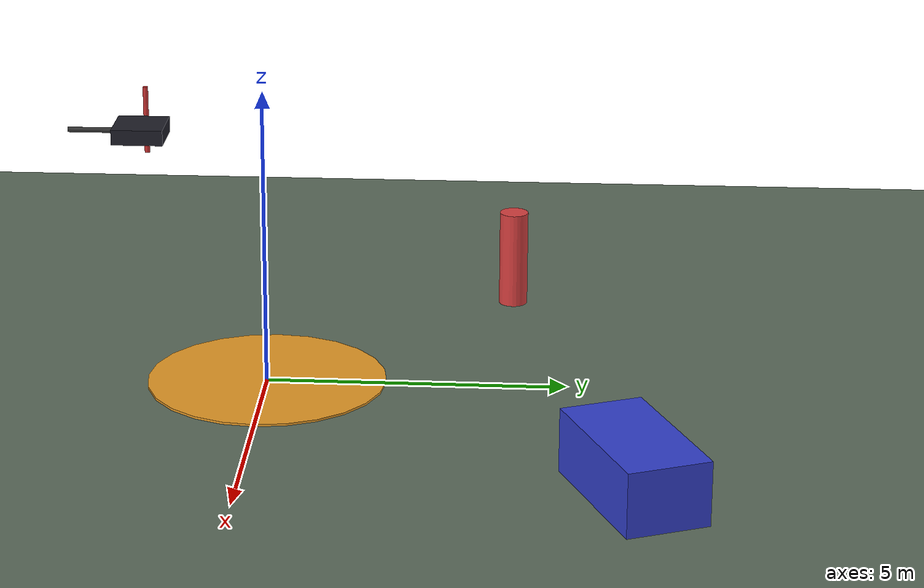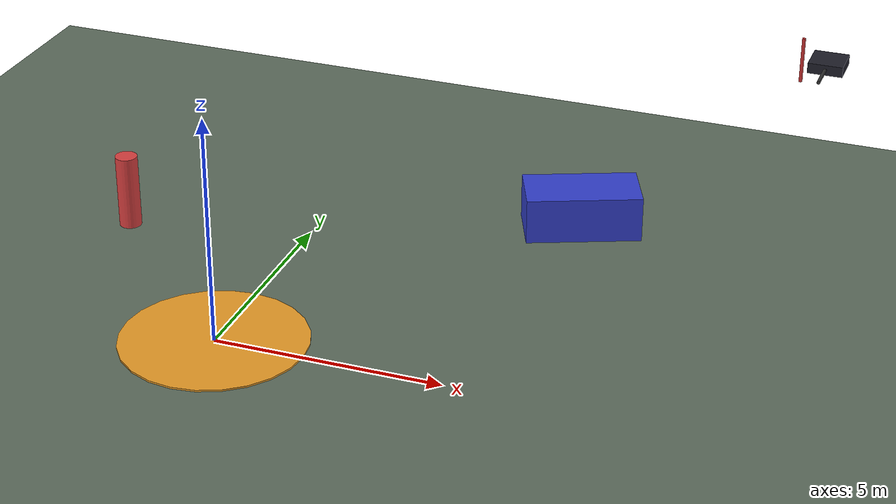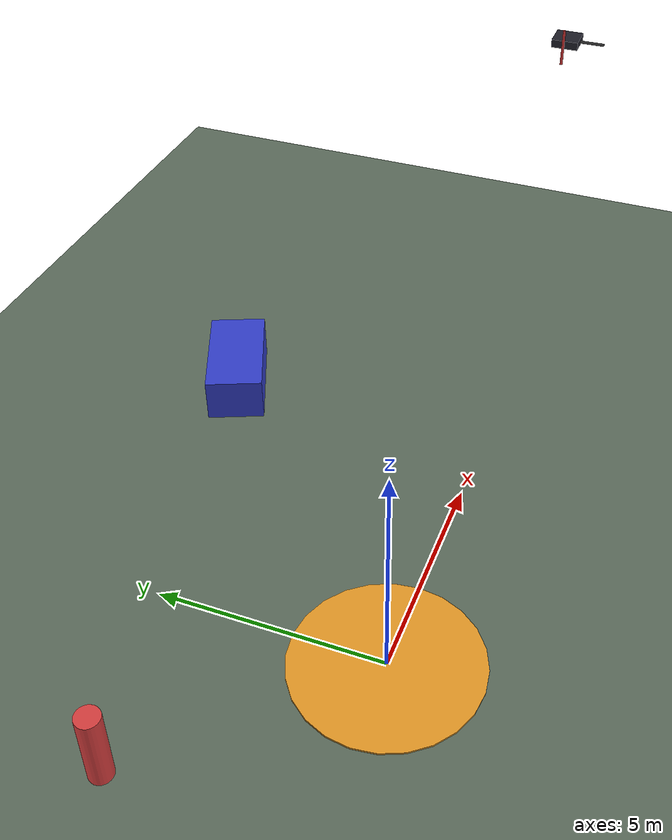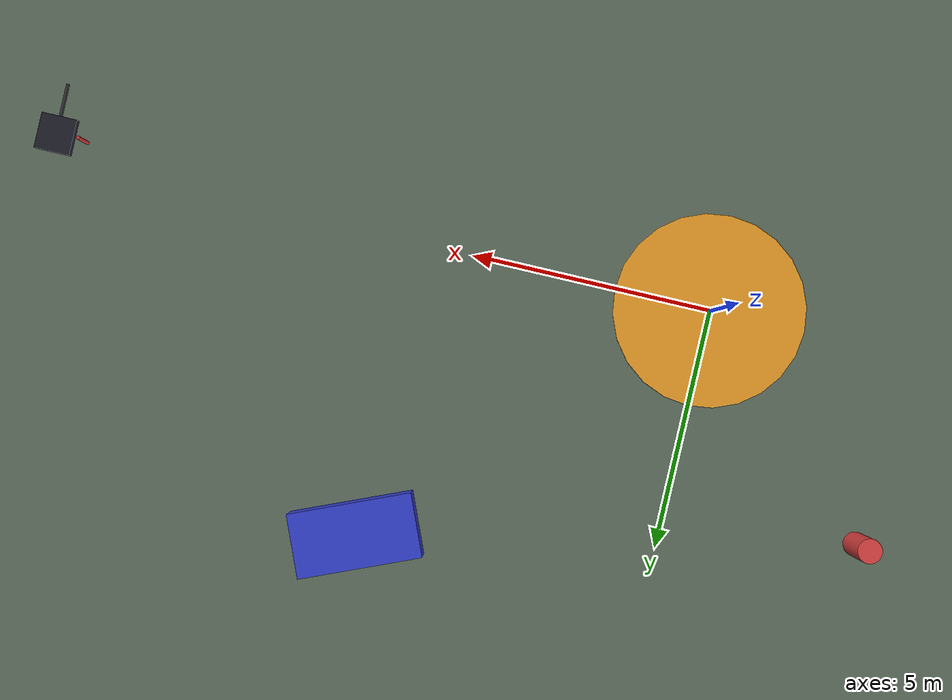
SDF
<?xml version="1.0" ?>
<sdf version="1.9">
  <world name="xray_world">
    <gravity>0 0 -9.8</gravity>

    <plugin filename="gz-sim-physics-system" name="gz::sim::systems::Physics"/>
    <plugin filename="gz-sim-user-commands-system" name="gz::sim::systems::UserCommands"/>
    <plugin filename="gz-sim-scene-broadcaster-system" name="gz::sim::systems::SceneBroadcaster"/>

    <scene>
      <ambient>0.6 0.6 0.6 1.0</ambient>
      <background>0.75 0.8 0.9 1.0</background>
    </scene>

    <light name="sun" type="directional">
      <pose>0 0 20 0 0 0</pose>
      <cast_shadows>true</cast_shadows>
      <diffuse>1.0 1.0 1.0 1.0</diffuse>
      <specular>0.2 0.2 0.2 1.0</specular>
      <attenuation>
        <range>1000</range>
        <constant>0.9</constant>
        <linear>0.01</linear>
        <quadratic>0.001</quadratic>
      </attenuation>
      <direction>-0.5 0.1 -0.9</direction>
    </light>

    <model name="ground_plane">
      <static>true</static>
      <link name="ground_link">
        <collision name="ground_collision">
          <geometry>
            <plane>
              <normal>0 0 1</normal>
              <size>200 200</size>
            </plane>
          </geometry>
        </collision>
        <visual name="ground_visual">
          <geometry>
            <plane>
              <normal>0 0 1</normal>
              <size>200 200</size>
            </plane>
          </geometry>
          <material>
            <ambient>0.28 0.34 0.28 1</ambient>
            <diffuse>0.36 0.42 0.36 1</diffuse>
            <specular>0.05 0.05 0.05 1</specular>
          </material>
        </visual>
      </link>
    </model>

    <model name="landing_pad">
      <static>true</static>
      <pose>0 0 0.02 0 0 0</pose>
      <link name="pad_link">
        <collision name="pad_collision">
          <geometry>
            <cylinder>
              <radius>2.0</radius>
              <length>0.04</length>
            </cylinder>
          </geometry>
        </collision>
        <visual name="pad_visual">
          <geometry>
            <cylinder>
              <radius>2.0</radius>
              <length>0.04</length>
            </cylinder>
          </geometry>
          <material>
            <ambient>0.85 0.55 0.12 1</ambient>
            <diffuse>0.9 0.6 0.15 1</diffuse>
          </material>
        </visual>
      </link>
    </model>

    <model name="vehicle_marker">
      <static>true</static>
      <pose>6 6 1.25 0 0 0.4</pose>
      <link name="vehicle_link">
        <collision name="vehicle_collision">
          <geometry>
            <box>
              <size>2.5 1.3 1.0</size>
            </box>
          </geometry>
        </collision>
        <visual name="vehicle_visual">
          <geometry>
            <box>
              <size>2.5 1.3 1.0</size>
            </box>
          </geometry>
          <material>
            <ambient>0.18 0.2 0.7 1</ambient>
            <diffuse>0.2 0.25 0.8 1</diffuse>
          </material>
        </visual>
      </link>
    </model>

    <model name="person_marker">
      <static>true</static>
      <pose>-4 4 0.85 0 0 0</pose>
      <link name="person_link">
        <collision name="person_collision">
          <geometry>
            <cylinder>
              <radius>0.25</radius>
              <length>1.7</length>
            </cylinder>
          </geometry>
        </collision>
        <visual name="person_visual">
          <geometry>
            <cylinder>
              <radius>0.25</radius>
              <length>1.7</length>
            </cylinder>
          </geometry>
          <material>
            <ambient>0.75 0.2 0.2 1</ambient>
            <diffuse>0.85 0.25 0.25 1</diffuse>
          </material>
        </visual>
      </link>
    </model>

    <model name="xray_uav">
      <static>false</static>
      <pose>12 0 8 0 0 3.14159</pose>

      <plugin filename="ignition-gazebo-velocity-control-system" name="ignition::gazebo::systems::VelocityControl">
        <topic>/xray/gz/cmd_vel</topic>
      </plugin>

      <plugin filename="ignition-gazebo-odometry-publisher-system" name="ignition::gazebo::systems::OdometryPublisher">
        <dimensions>3</dimensions>
        <odom_publish_frequency>30</odom_publish_frequency>
        <odom_topic>/xray/gz/odometry</odom_topic>
        <odom_frame>map</odom_frame>
        <robot_base_frame>base_link</robot_base_frame>
      </plugin>

      <link name="base_link">
        <gravity>false</gravity>
        <kinematic>true</kinematic>
        <inertial>
          <mass>1.5</mass>
          <inertia>
            <ixx>0.04</ixx>
            <iyy>0.04</iyy>
            <izz>0.08</izz>
            <ixy>0.0</ixy>
            <ixz>0.0</ixz>
            <iyz>0.0</iyz>
          </inertia>
        </inertial>

        <collision name="body_collision">
          <geometry>
            <box>
              <size>0.6 0.6 0.18</size>
            </box>
          </geometry>
        </collision>

        <visual name="body_visual">
          <geometry>
            <box>
              <size>0.6 0.6 0.18</size>
            </box>
          </geometry>
          <material>
            <ambient>0.1 0.1 0.12 1</ambient>
            <diffuse>0.12 0.12 0.16 1</diffuse>
          </material>
        </visual>

        <visual name="arm_x_pos">
          <pose>0.45 0 0 0 0 1.5708</pose>
          <geometry>
            <cylinder>
              <radius>0.03</radius>
              <length>0.8</length>
            </cylinder>
          </geometry>
          <material>
            <ambient>0.8 0.2 0.2 1</ambient>
            <diffuse>0.8 0.2 0.2 1</diffuse>
          </material>
        </visual>

        <visual name="arm_y_pos">
          <pose>0 0.45 0 1.5708 0 0</pose>
          <geometry>
            <cylinder>
              <radius>0.03</radius>
              <length>0.8</length>
            </cylinder>
          </geometry>
          <material>
            <ambient>0.2 0.2 0.2 1</ambient>
            <diffuse>0.2 0.2 0.2 1</diffuse>
          </material>
        </visual>
      </link>
    </model>
  </world>
</sdf>
